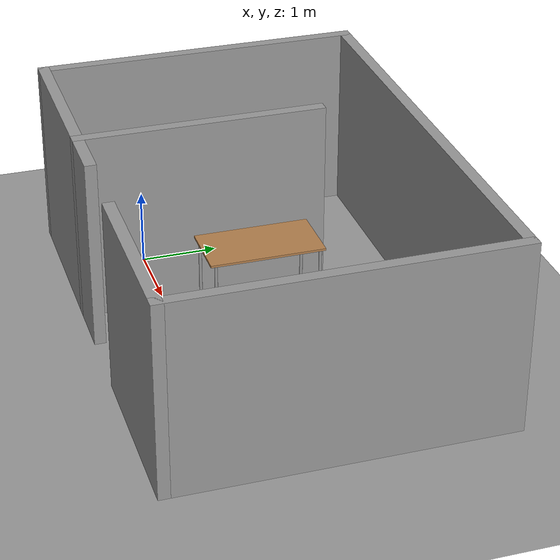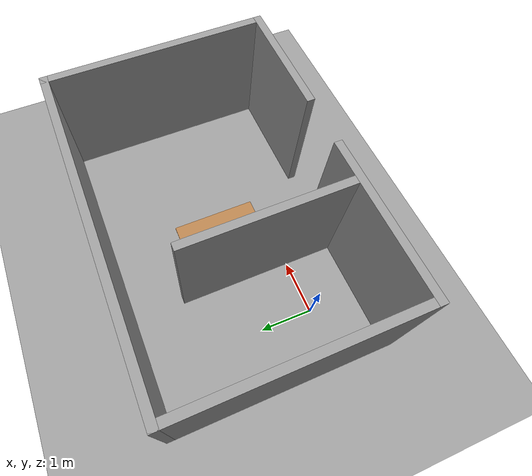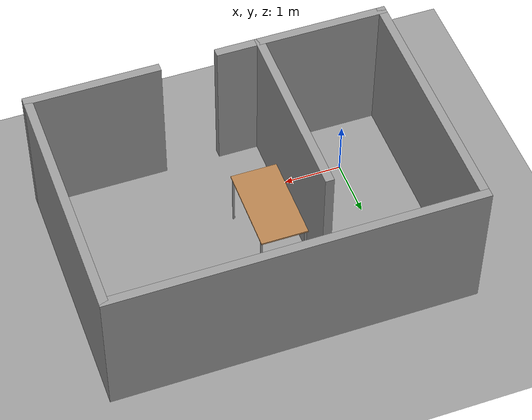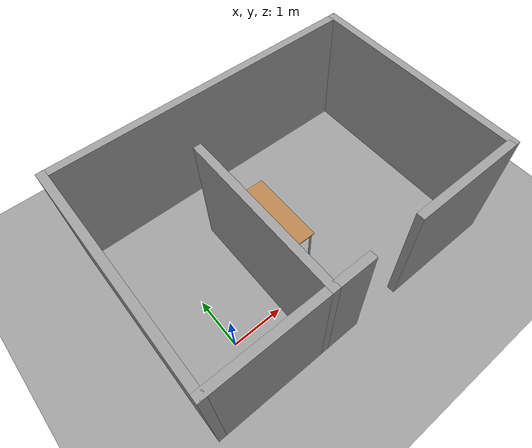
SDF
<sdf version="1.7">
 <world name="default">
  <scene><ambient>0.4 0.4 0.4 1</ambient><background>0.7 0.7 0.7 1</background><shadows>1</shadows></scene>
  <physics type="ode">
   <max_step_size>0.01</max_step_size>
   <real_time_factor>1</real_time_factor>
   <real_time_update_rate>100</real_time_update_rate>
  </physics>
  <model name="ground_plane_0">
   <static>1</static>
   <link name="link">
    <collision name="collision">
     <geometry><plane><normal>0 0 1</normal><size>100 100</size></plane></geometry>
     <surface><friction><ode><mu>100</mu><mu2>50</mu2></ode></friction></surface>
    </collision>
    <visual name="visual">
     <cast_shadows>0</cast_shadows>
     <geometry><plane><normal>0 0 1</normal><size>100 100</size></plane></geometry>
     <material>
      <script><uri>file://media/materials/scripts/gazebo.material</uri><name>Gazebo/Grey</name></script>
     </material>
    </visual>
    <velocity_decay><linear>0</linear><angular>0</angular></velocity_decay>
   </link>
   <pose>0.497681 0 0 0 -0 0</pose>
  </model>
  <gravity>0 0 -9.8</gravity>
  <magnetic_field>6e-06 2.3e-05 -4.2e-05</magnetic_field>
  <atmosphere type="adiabatic"/>
  <spherical_coordinates>
   <surface_model>EARTH_WGS84</surface_model>
   <latitude_deg>0</latitude_deg>
   <longitude_deg>0</longitude_deg>
   <elevation>0</elevation>
   <heading_deg>0</heading_deg>
  </spherical_coordinates>
  <model name="Untitled">
   <pose>1.99815 1.60634 0 0 -0 0</pose>
   <link name="Wall_11">
    <collision name="Wall_11_Collision">
     <geometry><box><size>3.25 0.15 2.5</size></box></geometry>
     <pose>0 0 1.25 0 -0 0</pose>
    </collision>
    <visual name="Wall_11_Visual">
     <pose>0 0 1.25 0 -0 0</pose>
     <geometry><box><size>3.25 0.15 2.5</size></box></geometry>
     <material>
      <script><uri>file://media/materials/scripts/gazebo.material</uri><name>Gazebo/Grey</name></script>
      <ambient>1 1 1 1</ambient>
     </material>
     <meta><layer>0</layer></meta>
    </visual>
    <pose>-0.890798 -1.06763 0 0 -0 1.5708</pose>
   </link>
   <link name="Wall_19">
    <collision name="Wall_19_Collision">
     <geometry><box><size>3 0.15 2.5</size></box></geometry>
     <pose>0 0 1.25 0 -0 0</pose>
    </collision>
    <visual name="Wall_19_Visual">
     <pose>0 0 1.25 0 -0 0</pose>
     <geometry><box><size>3 0.15 2.5</size></box></geometry>
     <material>
      <script><uri>file://media/materials/scripts/gazebo.material</uri><name>Gazebo/Grey</name></script>
      <ambient>1 1 1 1</ambient>
     </material>
     <meta><layer>0</layer></meta>
    </visual>
    <pose>-1.6225 -2.61737 0 0 -0 0</pose>
   </link>
   <link name="Wall_2">
    <collision name="Wall_2_Collision">
     <geometry><box><size>4.36 0.15 2.5</size></box></geometry>
     <pose>0 0 1.25 0 -0 0</pose>
    </collision>
    <visual name="Wall_2_Visual">
     <pose>0 0 1.25 0 -0 0</pose>
     <geometry><box><size>4.36 0.15 2.5</size></box></geometry>
     <material>
      <script><uri>file://media/materials/scripts/gazebo.material</uri><name>Gazebo/Grey</name></script>
      <ambient>1 1 1 1</ambient>
     </material>
     <meta><layer>0</layer></meta>
    </visual>
    <pose>-3.0475 -0.512372 0 0 -0 -1.5708</pose>
   </link>
   <link name="Wall_21">
    <collision name="Wall_21_Collision">
     <geometry><box><size>2.295 0.15 2.5</size></box></geometry>
     <pose>0 0 1.25 0 -0 0</pose>
    </collision>
    <visual name="Wall_21_Visual">
     <pose>0 0 1.25 0 -0 0</pose>
     <geometry><box><size>2.295 0.15 2.5</size></box></geometry>
     <material>
      <script><uri>file://media/materials/scripts/gazebo.material</uri><name>Gazebo/Grey</name></script>
      <ambient>1 1 1 1</ambient>
     </material>
     <meta><layer>0</layer></meta>
    </visual>
    <pose>1.975 -2.61737 0 0 -0 3.14159</pose>
   </link>
   <link name="Wall_5">
    <collision name="Wall_5_Collision">
     <geometry><box><size>6.245 0.15 2.5</size></box></geometry>
     <pose>0 0 1.25 0 -0 0</pose>
    </collision>
    <visual name="Wall_5_Visual">
     <pose>0 0 1.25 0 -0 0</pose>
     <geometry><box><size>6.245 0.15 2.5</size></box></geometry>
     <material>
      <script><uri>file://media/materials/scripts/gazebo.material</uri><name>Gazebo/Grey</name></script>
      <ambient>1 1 1 1</ambient>
     </material>
     <meta><layer>0</layer></meta>
    </visual>
    <pose>0 1.59263 0 0 -0 0</pose>
   </link>
   <link name="Wall_7">
    <collision name="Wall_7_Collision">
     <geometry><box><size>4.36 0.15 2.5</size></box></geometry>
     <pose>0 0 1.25 0 -0 0</pose>
    </collision>
    <visual name="Wall_7_Visual">
     <pose>0 0 1.25 0 -0 0</pose>
     <geometry><box><size>4.36 0.15 2.5</size></box></geometry>
     <material>
      <script><uri>file://media/materials/scripts/gazebo.material</uri><name>Gazebo/Grey</name></script>
      <ambient>1 1 1 1</ambient>
     </material>
     <meta><layer>0</layer></meta>
    </visual>
    <pose>3.0475 -0.512372 0 0 -0 -1.5708</pose>
   </link>
   <static>1</static>
  </model>
  <model name="Table">
   <static>1</static>
   <link name="link">
    <collision name="surface">
     <pose>0 0 1 0 -0 0</pose>
     <geometry><box><size>1.5 0.8 0.03</size></box></geometry>
     <surface><friction><ode><mu>0.6</mu><mu2>0.6</mu2></ode></friction></surface>
    </collision>
    <visual name="visual1">
     <pose>0 0 1 0 -0 0</pose>
     <geometry><box><size>1.5 0.8 0.03</size></box></geometry>
     <material>
      <diffuse>1 1 1 1</diffuse>
      <script><uri>file://media/materials/scripts/gazebo.material</uri><name>Gazebo/Wood</name></script>
      <pbr><metal><albedo_map>model://Table/Table_Diffuse.jpg</albedo_map></metal></pbr>
     </material>
    </visual>
    <collision name="front_left_leg">
     <pose>0.68 0.38 0.5 0 -0 0</pose>
     <geometry><cylinder><radius>0.02</radius><length>1</length></cylinder></geometry>
    </collision>
    <visual name="front_left_leg">
     <pose>0.68 0.38 0.5 0 -0 0</pose>
     <geometry><cylinder><radius>0.02</radius><length>1</length></cylinder></geometry>
     <material>
      <diffuse>0.5 0.5 0.5 1</diffuse>
      <script><uri>file://media/materials/scripts/gazebo.material</uri><name>Gazebo/Grey</name></script>
     </material>
    </visual>
    <collision name="front_right_leg">
     <pose>0.68 -0.38 0.5 0 -0 0</pose>
     <geometry><cylinder><radius>0.02</radius><length>1</length></cylinder></geometry>
    </collision>
    <visual name="front_right_leg">
     <pose>0.68 -0.38 0.5 0 -0 0</pose>
     <geometry><cylinder><radius>0.02</radius><length>1</length></cylinder></geometry>
     <material>
      <diffuse>0.5 0.5 0.5 1</diffuse>
      <script><uri>file://media/materials/scripts/gazebo.material</uri><name>Gazebo/Grey</name></script>
     </material>
    </visual>
    <collision name="back_right_leg">
     <pose>-0.68 -0.38 0.5 0 -0 0</pose>
     <geometry><cylinder><radius>0.02</radius><length>1</length></cylinder></geometry>
    </collision>
    <visual name="back_right_leg">
     <pose>-0.68 -0.38 0.5 0 -0 0</pose>
     <geometry><cylinder><radius>0.02</radius><length>1</length></cylinder></geometry>
     <material>
      <diffuse>0.5 0.5 0.5 1</diffuse>
      <script><uri>file://media/materials/scripts/gazebo.material</uri><name>Gazebo/Grey</name></script>
     </material>
    </visual>
    <collision name="back_left_leg">
     <pose>-0.68 0.38 0.5 0 -0 0</pose>
     <geometry><cylinder><radius>0.02</radius><length>1</length></cylinder></geometry>
    </collision>
    <visual name="back_left_leg">
     <pose>-0.68 0.38 0.5 0 -0 0</pose>
     <geometry><cylinder><radius>0.02</radius><length>1</length></cylinder></geometry>
     <material>
      <diffuse>0.5 0.5 0.5 1</diffuse>
      <script><uri>file://media/materials/scripts/gazebo.material</uri><name>Gazebo/Grey</name></script>
     </material>
    </visual>
   </link>
   <pose>1.71285 1.12432 0 0 0 -1.57246</pose>
  </model>
  <light name="sun" type="directional">
   <pose>2.37156 -0.158767 10 0 -0 0</pose>
   <diffuse>0.8 0.8 0.8 1</diffuse>
   <specular>0.2 0.2 0.2 1</specular>
   <attenuation>
    <range>1000</range>
    <constant>0.9</constant>
    <linear>0.01</linear>
    <quadratic>0.001</quadratic>
   </attenuation>
   <direction>-0.5 0.1 -0.9</direction>
  </light>
 </world>
</sdf>
